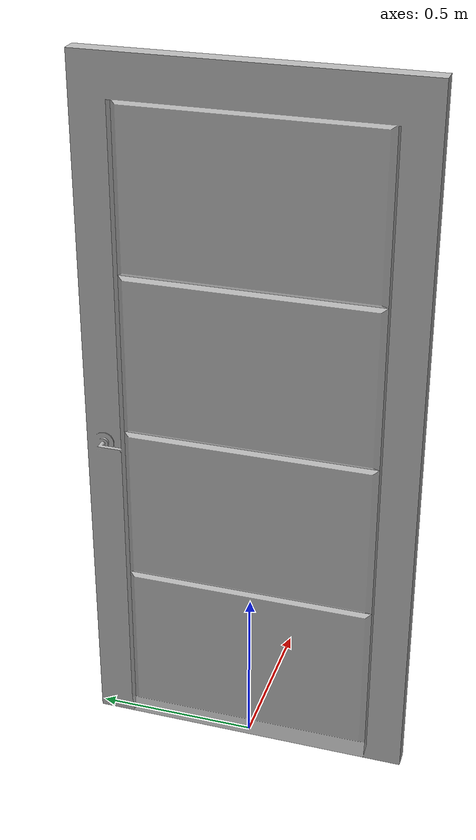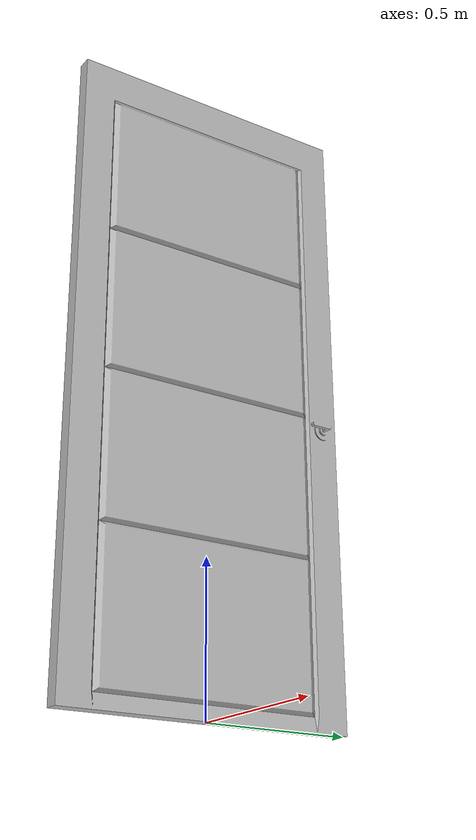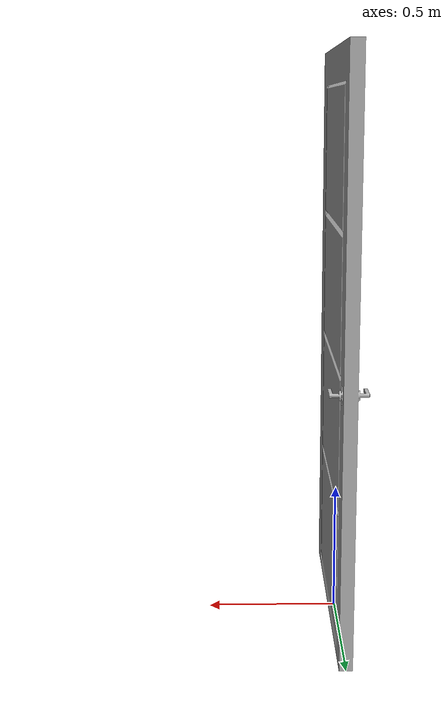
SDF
<sdf version="1.6">
	<model name="door">
		<static>true</static>
		<pose>0 0 0 0 0 0</pose>
		<link name="door_axis">
			<collision name="collision">
				<geometry>
					<mesh>
						<uri>meshes/door.dae</uri>
					</mesh>
				</geometry>
			</collision>
			<visual name="visual">
				<geometry>
					<mesh>
						<uri>meshes/door.dae</uri>
					</mesh>
				</geometry>
			</visual>
		</link>
	</model>
</sdf>
